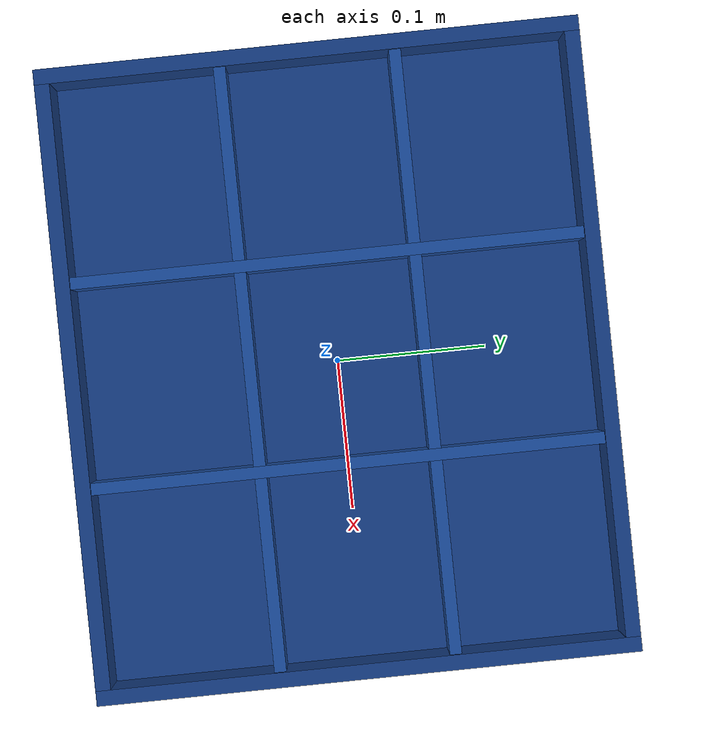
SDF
<?xml version="1.0"?>
<sdf version="1.8">
  <model name="sensoragent_bin_3x3">
    <static>true</static>
    <link name="bin">
      <collision name="bottom_collision">
        <pose>0 0 0.005 0 0 0</pose>
        <geometry><box><size>0.42 0.36 0.01</size></box></geometry>
      </collision>
      <visual name="bottom_visual">
        <pose>0 0 0.005 0 0 0</pose>
        <geometry><box><size>0.42 0.36 0.01</size></box></geometry>
        <material><diffuse>0.08 0.24 0.52 1</diffuse></material>
      </visual>

      <collision name="wall_x_positive_collision">
        <pose>0.205 0 0.045 0 0 0</pose>
        <geometry><box><size>0.01 0.36 0.08</size></box></geometry>
      </collision>
      <visual name="wall_x_positive_visual">
        <pose>0.205 0 0.045 0 0 0</pose>
        <geometry><box><size>0.01 0.36 0.08</size></box></geometry>
        <material><diffuse>0.08 0.24 0.52 1</diffuse></material>
      </visual>
      <collision name="wall_x_negative_collision">
        <pose>-0.205 0 0.045 0 0 0</pose>
        <geometry><box><size>0.01 0.36 0.08</size></box></geometry>
      </collision>
      <visual name="wall_x_negative_visual">
        <pose>-0.205 0 0.045 0 0 0</pose>
        <geometry><box><size>0.01 0.36 0.08</size></box></geometry>
        <material><diffuse>0.08 0.24 0.52 1</diffuse></material>
      </visual>
      <collision name="wall_y_positive_collision">
        <pose>0 0.175 0.045 0 0 0</pose>
        <geometry><box><size>0.40 0.01 0.08</size></box></geometry>
      </collision>
      <visual name="wall_y_positive_visual">
        <pose>0 0.175 0.045 0 0 0</pose>
        <geometry><box><size>0.40 0.01 0.08</size></box></geometry>
        <material><diffuse>0.08 0.24 0.52 1</diffuse></material>
      </visual>
      <collision name="wall_y_negative_collision">
        <pose>0 -0.175 0.045 0 0 0</pose>
        <geometry><box><size>0.40 0.01 0.08</size></box></geometry>
      </collision>
      <visual name="wall_y_negative_visual">
        <pose>0 -0.175 0.045 0 0 0</pose>
        <geometry><box><size>0.40 0.01 0.08</size></box></geometry>
        <material><diffuse>0.08 0.24 0.52 1</diffuse></material>
      </visual>

      <collision name="divider_x_negative_collision">
        <pose>-0.068 0 0.045 0 0 0</pose>
        <geometry><box><size>0.008 0.34 0.07</size></box></geometry>
      </collision>
      <visual name="divider_x_negative_visual">
        <pose>-0.068 0 0.045 0 0 0</pose>
        <geometry><box><size>0.008 0.34 0.07</size></box></geometry>
        <material><diffuse>0.10 0.30 0.62 1</diffuse></material>
      </visual>
      <collision name="divider_x_positive_collision">
        <pose>0.068 0 0.045 0 0 0</pose>
        <geometry><box><size>0.008 0.34 0.07</size></box></geometry>
      </collision>
      <visual name="divider_x_positive_visual">
        <pose>0.068 0 0.045 0 0 0</pose>
        <geometry><box><size>0.008 0.34 0.07</size></box></geometry>
        <material><diffuse>0.10 0.30 0.62 1</diffuse></material>
      </visual>
      <collision name="divider_y_negative_collision">
        <pose>0 -0.058 0.045 0 0 0</pose>
        <geometry><box><size>0.40 0.008 0.07</size></box></geometry>
      </collision>
      <visual name="divider_y_negative_visual">
        <pose>0 -0.058 0.045 0 0 0</pose>
        <geometry><box><size>0.40 0.008 0.07</size></box></geometry>
        <material><diffuse>0.10 0.30 0.62 1</diffuse></material>
      </visual>
      <collision name="divider_y_positive_collision">
        <pose>0 0.058 0.045 0 0 0</pose>
        <geometry><box><size>0.40 0.008 0.07</size></box></geometry>
      </collision>
      <visual name="divider_y_positive_visual">
        <pose>0 0.058 0.045 0 0 0</pose>
        <geometry><box><size>0.40 0.008 0.07</size></box></geometry>
        <material><diffuse>0.10 0.30 0.62 1</diffuse></material>
      </visual>
    </link>
  </model>
</sdf>
